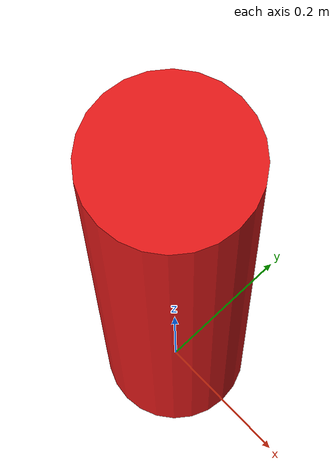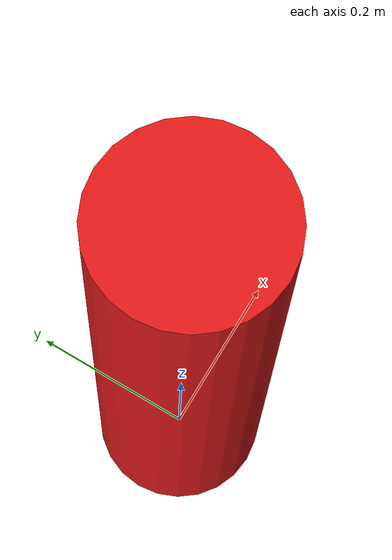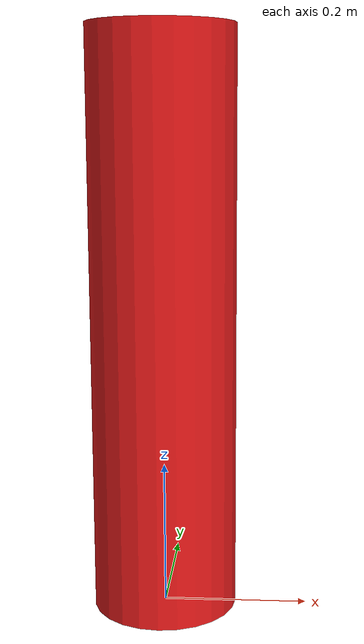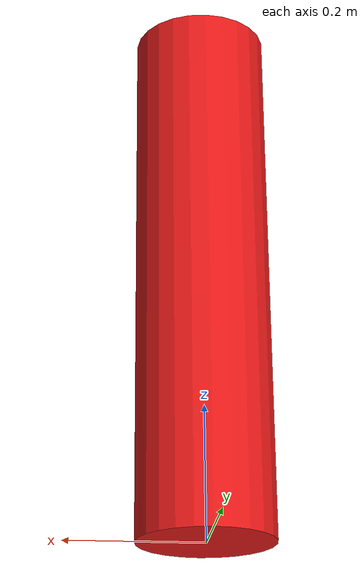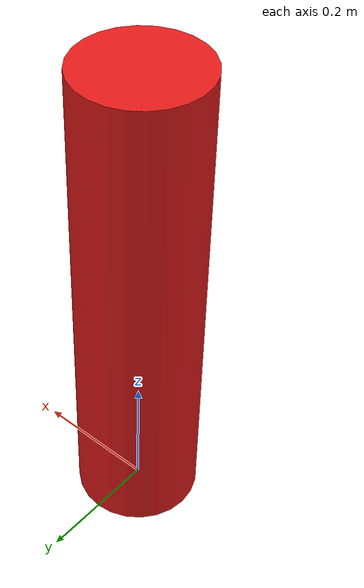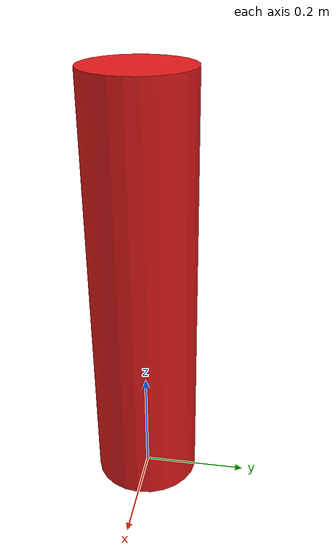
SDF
<?xml version="1.0"?>
<sdf version="1.7">
  <model name="dynamic_cylinder">
    <static>false</static>
    <allow_auto_disable>false</allow_auto_disable>

    <link name="link">
      <pose>0 0 0.4 0 0 0</pose>
      <gravity>false</gravity>
      <self_collide>false</self_collide>
      <kinematic>true</kinematic>

      <inertial>
        <mass>5.0</mass>
        <inertia>
          <ixx>0.2</ixx>
          <ixy>0.0</ixy>
          <ixz>0.0</ixz>
          <iyy>0.2</iyy>
          <iyz>0.0</iyz>
          <izz>0.1</izz>
        </inertia>
      </inertial>

      <collision name="collision">
        <geometry>
          <cylinder>
            <radius>0.10</radius>
            <length>0.80</length>
          </cylinder>
        </geometry>
        <max_contacts>10</max_contacts>
      </collision>

      <visual name="visual">
        <geometry>
          <cylinder>
            <radius>0.10</radius>
            <length>0.80</length>
          </cylinder>
        </geometry>
        <material>
          <ambient>0.9 0.1 0.1 1</ambient>
          <diffuse>0.9 0.1 0.1 1</diffuse>
          <specular>0.3 0.3 0.3 1</specular>
        </material>
      </visual>
    </link>
  </model>
</sdf>
